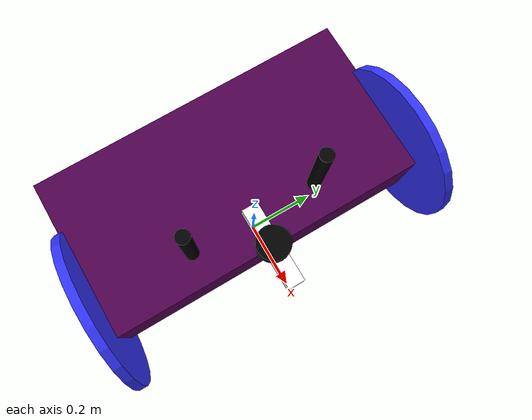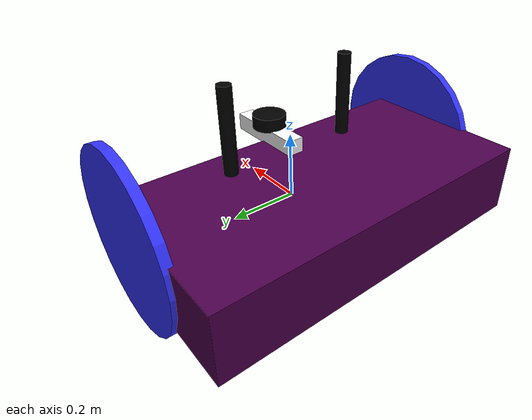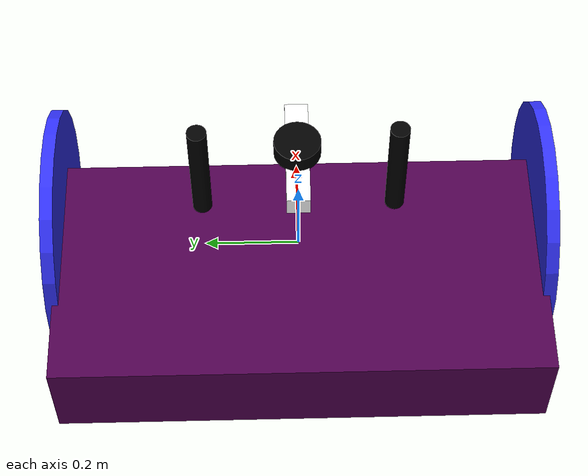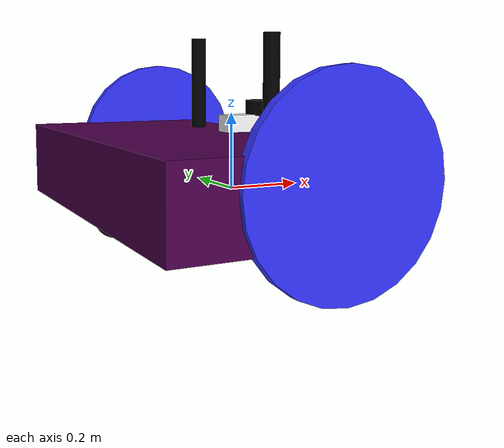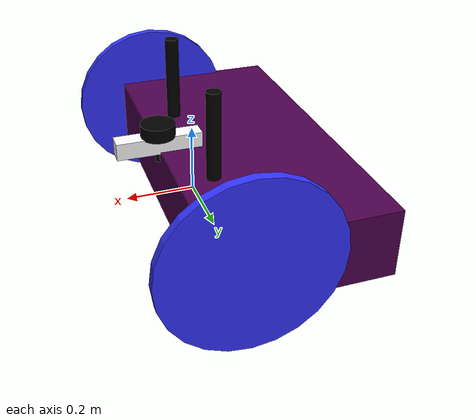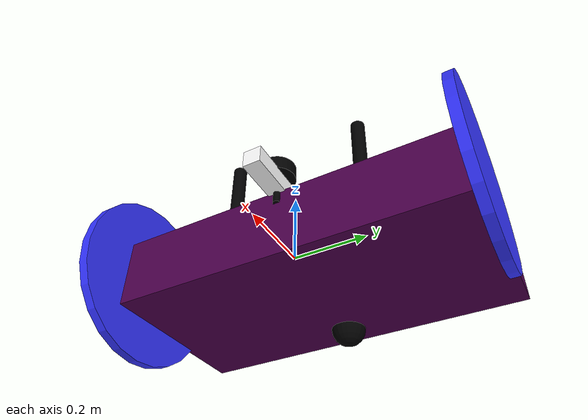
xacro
<?xml version="1.0" ?>
<robot name="robot" xmlns:xacro="http://www.ros.org/wiki/xacro">
<xacro:include filename="$(find robot3l)/urdf/robot_imu.gazebo"/>
  <!-- Materials -->
  <material name="white"><color rgba="1 1 1 1"/></material>
  <material name="orange"><color rgba="0.3 0 0.3 1"/></material>
  <material name="blue"><color rgba="0.2 0.2 1 1"/></material>
  <material name="black"><color rgba="0 0 0 1"/></material>
  <material name="red"><color rgba="1 0 0 1"/></material>
  <material name="gray"><color rgba="0.3 0.3 0.3 1"/></material>

  <!-- Base Link -->
  <link name="base_link"/>

  <link name="base_footprint"/>
  <joint name="base_footprint_joint" type="fixed">
    <parent link="base_link"/>
    <child link="base_footprint"/>
    <origin rpy="0 0 0" xyz="0 0 -0.138"/>
  </joint>

  <!-- Chassis -->
  <joint name="chassis_joint" type="fixed">
    <parent link="base_link"/>
    <child link="chassis"/>
    <origin xyz="-0.4 0 -0.05"/>
  </joint>

  <link name="chassis">
    <inertial>
      <origin rpy="0 0 0" xyz="0.25 0 0.1"/>
      <mass value="1.0"/>
      <inertia ixx="0.08666666666666667" ixy="0.0" ixz="0.0" iyy="0.02416666666666667" iyz="0.0" izz="0.10416666666666666"/>
    </inertial>
    <visual>
      <origin xyz="0.25 0 0.1"/>
      <geometry>
        <box size="0.5 1 0.2"/>
      </geometry>
      <material name="orange"/>
    </visual>
    <collision>
      <origin xyz="0.25 0 0.1"/>
      <geometry>
        <box size="0.5 1 0.2"/>
      </geometry>
    </collision>
  </link>
  <gazebo reference="chassis">
    <material>Gazebo/Orange</material>
  </gazebo>

  <!-- Left Wheel -->
  <joint name="left_wheel_joint" type="continuous">
    <parent link="base_link"/>
    <child link="left_wheel"/>
    <origin rpy="-1.5707963267948966 0 3.141592653589793" xyz="0 0.5 0.075"/>
    <axis xyz="0 0 1"/>
  </joint>

  <link name="left_wheel">
    <visual>
      <geometry>
        <cylinder length="0.026" radius="0.25"/>
      </geometry>
      <material name="blue"/>
    </visual>
    <collision>
      <geometry>
        <cylinder length="0.026" radius="0.25"/>
      </geometry>
    </collision>
    <inertial>
      <origin rpy="0 0 0" xyz="0 0 0"/>
      <mass value="0.05"/>
      <inertia ixx="0.0003" ixy="0.0" ixz="0.0" iyy="0.0003" iyz="0.0" izz="0.0005"/>
    </inertial>
  </link>
  <gazebo reference="left_wheel">
    <material>Gazebo/Blue</material>
  </gazebo>

  <!-- Right Wheel -->
  <joint name="right_wheel_joint" type="continuous">
    <parent link="base_link"/>
    <child link="right_wheel"/>
    <origin rpy="1.5707963267948966 0 3.141592653589793" xyz="0 -0.5 0.075"/>
    <axis xyz="0 0 -1"/>
  </joint>

  <link name="right_wheel">
    <visual>
      <geometry>
        <cylinder length="0.026" radius="0.25"/>
      </geometry>
      <material name="blue"/>
    </visual>
    <collision>
      <geometry>
        <cylinder length="0.026" radius="0.25"/>
      </geometry>
    </collision>
    <inertial>
      <origin rpy="0 0 0" xyz="0 0 0"/>
      <mass value="0.05"/>
      <inertia ixx="0.0003" ixy="0.0" ixz="0.0" iyy="0.0003" iyz="0.0" izz="0.0005"/>
    </inertial>
  </link>
  <gazebo reference="right_wheel">
    <material>Gazebo/Blue</material>
  </gazebo>

  <!-- Caster Wheel -->
  <joint name="caster_wheel_joint" type="fixed">
    <parent link="chassis"/>
    <child link="caster_wheel"/>
    <origin xyz="0.075 0 0.0"/>
  </joint>
  <link name="caster_wheel">
    <visual>
      <geometry>
        <sphere radius="0.05"/>
      </geometry>
      <material name="black"/>
    </visual>
    <collision>
      <geometry>
        <sphere radius="0.05"/>
      </geometry>
    </collision>
    <inertial>
      <origin rpy="0 0 0" xyz="0 0 0"/>
      <mass value="0.01"/>
      <inertia ixx="1e-5" ixy="0.0" ixz="0.0" iyy="1e-5" iyz="0.0" izz="1e-5"/>
    </inertial>
  </link>
  <gazebo reference="caster_wheel">
    <material>Gazebo/Black</material>
    <mu1 value="0.001"/>
    <mu2 value="0.001"/>
  </gazebo>

  <!-- Tail -->
  <joint name="tail" type="fixed">
    <parent link="chassis"/>
    <child link="tail_link"/>
    <origin rpy="0 0 0" xyz="0.5 0 0.22"/>
  </joint>
  <link name="tail_link">
    <visual>
      <geometry>
        <box size="0.25 0.05 0.05"/>
      </geometry>
      <material name="white"/>
    </visual>
    <collision>
      <geometry>
        <box size="0.25 0.05 0.05"/>
      </geometry>
    </collision>
    <inertial>
      <origin rpy="0 0 0" xyz="0.5 0 0.22"/>
      <mass value="0.001"/>
      <inertia ixx="4.17e-7" ixy="0.0" ixz="0.0" iyy="6.77e-5" iyz="0.0" izz="6.77e-5"/>
    </inertial>
  </link>
  <gazebo reference="tail_link">
    <material>Gazebo/White</material>
    <mu1 value="0.001"/>
    <mu2 value="0.001"/>
  </gazebo>

  <!-- Antenna -->
  <joint name="antenna_joint" type="fixed">
    <parent link="chassis"/>
    <child link="antenna"/>
    <origin xyz="0.4 -0.2 0.3" rpy="0 0 0"/>
  </joint>
  <link name="antenna">
    <visual>
      <geometry>
        <cylinder radius="0.02" length="0.3"/>
      </geometry>
      <material name="black"/>
    </visual>
    <collision>
      <geometry>
        <cylinder radius="0.02" length="0.3"/>
      </geometry>
    </collision>
    <inertial>
      <mass value="0.05"/>
      <origin xyz="0 0 0.15"/>
      <inertia ixx="0.0001" ixy="0" ixz="0" iyy="0.0001" iyz="0" izz="0.0001"/>
    </inertial>
  </link>
  <!-- Antenna2 -->
  <joint name="antenna2_joint" type="fixed">
    <parent link="chassis"/>
    <child link="antenna2"/>
    <origin xyz="0.4 0.2 0.3" rpy="0 0 0"/>
  </joint>
  <link name="antenna2">
    <visual>
      <geometry>
        <cylinder radius="0.02" length="0.3"/>
      </geometry>
      <material name="black"/>
    </visual>
    <collision>
      <geometry>
        <cylinder radius="0.02" length="0.3"/>
      </geometry>
    </collision>
    <inertial>
      <mass value="0.05"/>
      <origin xyz="0 0 0.15"/>
      <inertia ixx="0.0001" ixy="0" ixz="0" iyy="0.0001" iyz="0" izz="0.0001"/>
    </inertial>
  </link>

    <!-- Lidar -->
  <joint name="laser_joint" type="fixed">
    <parent link="base_link"/>
    <child link="laser_frame"/>
    <origin xyz="0.1 0 0.212" rpy="0 0 0"/>
  </joint>

  <link name="laser_frame">
    <visual>
      <geometry>
        <cylinder radius="0.05" length="0.04"/>
      </geometry>
      <material name="black"/>
    </visual>
    <visual>
      <origin xyz="0 0 -0.05"/>
      <geometry>
        <cylinder radius="0.01" length="0.1"/>
      </geometry>
      <material name="black"/>
    </visual>
    <collision>
      <geometry>
        <cylinder radius="0.05" length="0.04"/>
      </geometry>
    </collision>
    <inertial>
      <origin xyz="0 0 0" rpy="0 0 0"/>
      <mass value="0.1" />
      <inertia ixx="${(1/12) * 0.1 * (3*0.05*0.05 + 0.04*0.04)}" ixy="0.0" ixz="0.0"
               iyy="${(1/12) * 0.1 * (3*0.05*0.05 + 0.04*0.04)}" iyz="0.0"
               izz="${(1/2) * 0.1 * (0.05*0.05)}" />
    </inertial>
  </link>

  <!-- === IMU === -->
  <joint name="imu_joint" type="fixed">
    <parent link="base_link"/>
    <child link="imu_link"/>
    <origin xyz="0 0 0" rpy="0 0 0"/>
  </joint>

  <link name="imu_link">
    <inertial>
      <origin xyz="0 0 0" rpy="0 0 0"/>
      <mass value="0.01"/>
      <inertia
        ixx="1e-6" ixy="0" ixz="0"
        iyy="1e-6" iyz="0"
        izz="1e-6"/>
    </inertial>

    <visual>
      <geometry>
        <box size="0.02 0.02 0.02"/>
      </geometry>
    </visual>

    <collision>                     <!-- ДОБАВЛЕНО -->
      <geometry>
        <box size="0.02 0.02 0.02"/>
      </geometry>
    </collision>

  </link>

  <gazebo reference="laser_frame">
    <material>Gazebo/Black</material>
    <sensor name='laser_sensor_frame' type='gpu_lidar'>
        <gz_frame_id>laser_frame</gz_frame_id>
        <pose>0 0 0 0 0 0</pose>
        <visualize>true</visualize>
        <always_on>true</always_on>
        <update_rate>20</update_rate>
        <ray>
            <scan>
                <horizontal>
                    <samples>360</samples>
                    <min_angle>-3.14</min_angle>
                    <max_angle>3.14</max_angle>
                </horizontal>
            </scan>
            <range>
                <min>0.3</min>
                <max>12</max>
            </range>
            <noise>
                <type>gaussian</type>
                <mean>0.0</mean>
                <stddev>0.007</stddev>
            </noise>
        </ray>
    </sensor>
  </gazebo>

  <!-- Plugins -->
<gazebo>

    <plugin filename="libgz-sim-joint-state-publisher-system.so" name="gz::sim::systems::JointStatePublisher"/>
    <plugin filename="libgz-sim-diff-drive-system.so" name="gz::sim::systems::DiffDrive">
      <left_joint>left_wheel_joint</left_joint>
      <right_joint>right_wheel_joint</right_joint>
      <child_frame_id>robot/base_link</child_frame_id>
      <wheel_separation>0.291</wheel_separation>
      <wheel_radius>0.1</wheel_radius>

        <odom_update_frequency>50</odom_update_frequency>

    <!-- ВАЖНО! Новые параметры TF в Sim8 -->
    <odom_frame>odom</odom_frame>                 <!-- новое имя -->
    <base_frame>base_link</base_frame>            <!-- новое имя -->
    <publish_tf>true</publish_tf>                 <!-- работает -->

    <!-- ЭТО КРИТИЧЕСКОЕ ЗНАЧЕНИЕ ДЛЯ Sim8 -->
    <publish_odom>true</publish_odom>             <!-- включает одометрию -->
    <publish_cmd>true</publish_cmd>               <!-- включает cmd_vel -->

    </plugin>

      <plugin filename="gz-sim-sensors-system"
          name="gz::sim::systems::Sensors">
        <render_engine>ogre2</render_engine>
      </plugin>

  </gazebo>

</robot>
